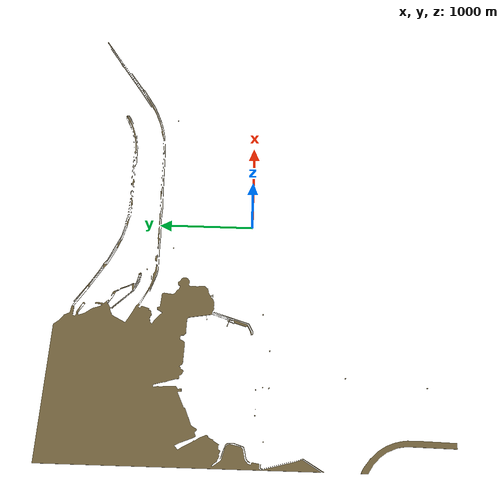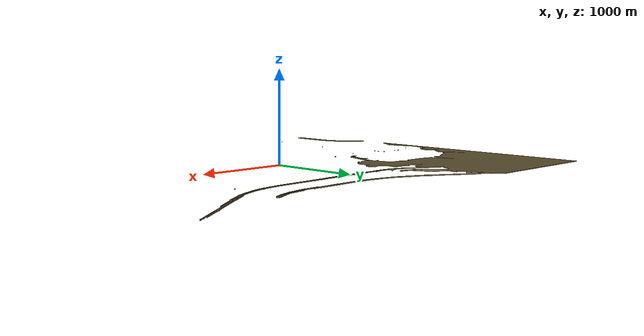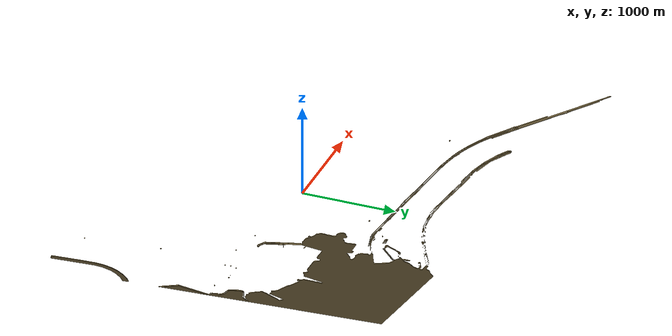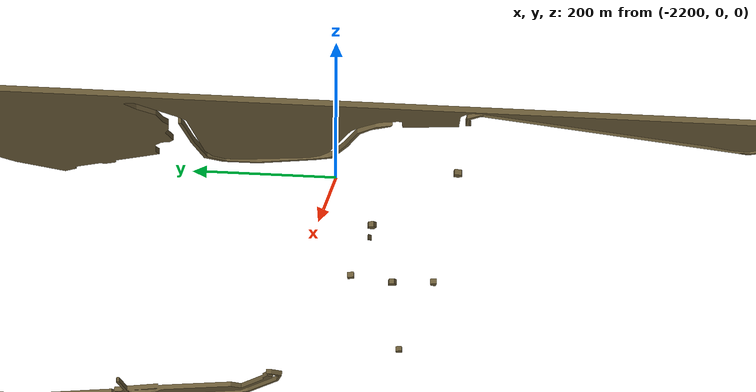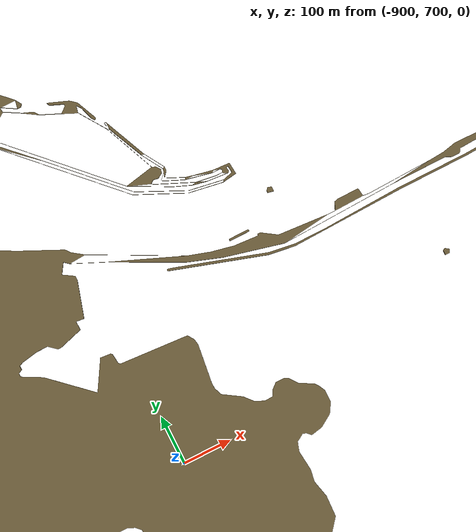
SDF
<?xml version="1.0"?>
<sdf version="1.9">
  <model name="ccs_chart_obstacles_crop">
    <static>true</static>
    <link name="chart_obstacle_001">
      <pose>-1657.167807 1187.774981 0 0 0 0</pose>
      <visual name="visual">
        <geometry>
          <mesh>
            <uri>meshes/chart_obstacle_001.obj</uri>
          </mesh>
        </geometry>
        <material>
          <ambient>0.32 0.28 0.18 1</ambient>
          <diffuse>0.42 0.36 0.22 1</diffuse>
        </material>
      </visual>
      <collision name="collision">
        <geometry>
          <mesh>
            <uri>meshes/chart_obstacle_001.obj</uri>
          </mesh>
        </geometry>
      </collision>
    </link>
    <link name="chart_obstacle_002">
      <pose>-2275.818883 -1518.496843 0 0 0 0</pose>
      <visual name="visual">
        <geometry>
          <mesh>
            <uri>meshes/chart_obstacle_002.obj</uri>
          </mesh>
        </geometry>
        <material>
          <ambient>0.32 0.28 0.18 1</ambient>
          <diffuse>0.42 0.36 0.22 1</diffuse>
        </material>
      </visual>
      <collision name="collision">
        <geometry>
          <mesh>
            <uri>meshes/chart_obstacle_002.obj</uri>
          </mesh>
        </geometry>
      </collision>
    </link>
    <link name="chart_obstacle_003">
      <pose>769.148826 1104.864223 0 0 0 0</pose>
      <visual name="visual">
        <geometry>
          <mesh>
            <uri>meshes/chart_obstacle_003.obj</uri>
          </mesh>
        </geometry>
        <material>
          <ambient>0.32 0.28 0.18 1</ambient>
          <diffuse>0.42 0.36 0.22 1</diffuse>
        </material>
      </visual>
      <collision name="collision">
        <geometry>
          <mesh>
            <uri>meshes/chart_obstacle_003.obj</uri>
          </mesh>
        </geometry>
      </collision>
    </link>
    <link name="chart_obstacle_004">
      <pose>1157.919353 1407.091162 0 0 0 0</pose>
      <visual name="visual">
        <geometry>
          <mesh>
            <uri>meshes/chart_obstacle_004.obj</uri>
          </mesh>
        </geometry>
        <material>
          <ambient>0.32 0.28 0.18 1</ambient>
          <diffuse>0.42 0.36 0.22 1</diffuse>
        </material>
      </visual>
      <collision name="collision">
        <geometry>
          <mesh>
            <uri>meshes/chart_obstacle_004.obj</uri>
          </mesh>
        </geometry>
      </collision>
    </link>
    <link name="chart_obstacle_005">
      <pose>1954.659041 1504.139593 0 0 0 0</pose>
      <visual name="visual">
        <geometry>
          <mesh>
            <uri>meshes/chart_obstacle_005.obj</uri>
          </mesh>
        </geometry>
        <material>
          <ambient>0.32 0.28 0.18 1</ambient>
          <diffuse>0.42 0.36 0.22 1</diffuse>
        </material>
      </visual>
      <collision name="collision">
        <geometry>
          <mesh>
            <uri>meshes/chart_obstacle_005.obj</uri>
          </mesh>
        </geometry>
      </collision>
    </link>
    <link name="chart_obstacle_006">
      <pose>-2444.251734 -446.826123 0 0 0 0</pose>
      <visual name="visual">
        <geometry>
          <mesh>
            <uri>meshes/chart_obstacle_006.obj</uri>
          </mesh>
        </geometry>
        <material>
          <ambient>0.32 0.28 0.18 1</ambient>
          <diffuse>0.42 0.36 0.22 1</diffuse>
        </material>
      </visual>
      <collision name="collision">
        <geometry>
          <mesh>
            <uri>meshes/chart_obstacle_006.obj</uri>
          </mesh>
        </geometry>
      </collision>
    </link>
    <link name="chart_obstacle_007">
      <pose>-1052.788999 140.364629 0 0 0 0</pose>
      <visual name="visual">
        <geometry>
          <mesh>
            <uri>meshes/chart_obstacle_007.obj</uri>
          </mesh>
        </geometry>
        <material>
          <ambient>0.32 0.28 0.18 1</ambient>
          <diffuse>0.42 0.36 0.22 1</diffuse>
        </material>
      </visual>
      <collision name="collision">
        <geometry>
          <mesh>
            <uri>meshes/chart_obstacle_007.obj</uri>
          </mesh>
        </geometry>
      </collision>
    </link>
    <link name="chart_obstacle_008">
      <pose>-2325.773106 104.004432 0 0 0 0</pose>
      <visual name="visual">
        <geometry>
          <mesh>
            <uri>meshes/chart_obstacle_008.obj</uri>
          </mesh>
        </geometry>
        <material>
          <ambient>0.32 0.28 0.18 1</ambient>
          <diffuse>0.42 0.36 0.22 1</diffuse>
        </material>
      </visual>
      <collision name="collision">
        <geometry>
          <mesh>
            <uri>meshes/chart_obstacle_008.obj</uri>
          </mesh>
        </geometry>
      </collision>
    </link>
    <link name="chart_obstacle_009">
      <pose>-606.000000 1045.000000 0 0 0 0</pose>
      <visual name="visual">
        <geometry>
          <mesh>
            <uri>meshes/chart_obstacle_009.obj</uri>
          </mesh>
        </geometry>
        <material>
          <ambient>0.32 0.28 0.18 1</ambient>
          <diffuse>0.42 0.36 0.22 1</diffuse>
        </material>
      </visual>
      <collision name="collision">
        <geometry>
          <mesh>
            <uri>meshes/chart_obstacle_009.obj</uri>
          </mesh>
        </geometry>
      </collision>
    </link>
    <link name="chart_obstacle_010">
      <pose>-2243.601846 -164.547293 0 0 0 0</pose>
      <visual name="visual">
        <geometry>
          <mesh>
            <uri>meshes/chart_obstacle_010.obj</uri>
          </mesh>
        </geometry>
        <material>
          <ambient>0.32 0.28 0.18 1</ambient>
          <diffuse>0.42 0.36 0.22 1</diffuse>
        </material>
      </visual>
      <collision name="collision">
        <geometry>
          <mesh>
            <uri>meshes/chart_obstacle_010.obj</uri>
          </mesh>
        </geometry>
      </collision>
    </link>
    <link name="chart_obstacle_011">
      <pose>-1998.398154 -78.547293 0 0 0 0</pose>
      <visual name="visual">
        <geometry>
          <mesh>
            <uri>meshes/chart_obstacle_011.obj</uri>
          </mesh>
        </geometry>
        <material>
          <ambient>0.32 0.28 0.18 1</ambient>
          <diffuse>0.42 0.36 0.22 1</diffuse>
        </material>
      </visual>
      <collision name="collision">
        <geometry>
          <mesh>
            <uri>meshes/chart_obstacle_011.obj</uri>
          </mesh>
        </geometry>
      </collision>
    </link>
    <link name="chart_obstacle_012">
      <pose>-261.786448 834.409306 0 0 0 0</pose>
      <visual name="visual">
        <geometry>
          <mesh>
            <uri>meshes/chart_obstacle_012.obj</uri>
          </mesh>
        </geometry>
        <material>
          <ambient>0.32 0.28 0.18 1</ambient>
          <diffuse>0.42 0.36 0.22 1</diffuse>
        </material>
      </visual>
      <collision name="collision">
        <geometry>
          <mesh>
            <uri>meshes/chart_obstacle_012.obj</uri>
          </mesh>
        </geometry>
      </collision>
    </link>
    <link name="chart_obstacle_013">
      <pose>-1724.847282 -148.592003 0 0 0 0</pose>
      <visual name="visual">
        <geometry>
          <mesh>
            <uri>meshes/chart_obstacle_013.obj</uri>
          </mesh>
        </geometry>
        <material>
          <ambient>0.32 0.28 0.18 1</ambient>
          <diffuse>0.42 0.36 0.22 1</diffuse>
        </material>
      </visual>
      <collision name="collision">
        <geometry>
          <mesh>
            <uri>meshes/chart_obstacle_013.obj</uri>
          </mesh>
        </geometry>
      </collision>
    </link>
    <link name="chart_obstacle_014">
      <pose>-512.592003 1096.847282 0 0 0 0</pose>
      <visual name="visual">
        <geometry>
          <mesh>
            <uri>meshes/chart_obstacle_014.obj</uri>
          </mesh>
        </geometry>
        <material>
          <ambient>0.32 0.28 0.18 1</ambient>
          <diffuse>0.42 0.36 0.22 1</diffuse>
        </material>
      </visual>
      <collision name="collision">
        <geometry>
          <mesh>
            <uri>meshes/chart_obstacle_014.obj</uri>
          </mesh>
        </geometry>
      </collision>
    </link>
    <link name="chart_obstacle_015">
      <pose>-1613.280508 -963.167809 0 0 0 0</pose>
      <visual name="visual">
        <geometry>
          <mesh>
            <uri>meshes/chart_obstacle_015.obj</uri>
          </mesh>
        </geometry>
        <material>
          <ambient>0.32 0.28 0.18 1</ambient>
          <diffuse>0.42 0.36 0.22 1</diffuse>
        </material>
      </visual>
      <collision name="collision">
        <geometry>
          <mesh>
            <uri>meshes/chart_obstacle_015.obj</uri>
          </mesh>
        </geometry>
      </collision>
    </link>
    <link name="chart_obstacle_016">
      <pose>-1359.145777 -212.988905 0 0 0 0</pose>
      <visual name="visual">
        <geometry>
          <mesh>
            <uri>meshes/chart_obstacle_016.obj</uri>
          </mesh>
        </geometry>
        <material>
          <ambient>0.32 0.28 0.18 1</ambient>
          <diffuse>0.42 0.36 0.22 1</diffuse>
        </material>
      </visual>
      <collision name="collision">
        <geometry>
          <mesh>
            <uri>meshes/chart_obstacle_016.obj</uri>
          </mesh>
        </geometry>
      </collision>
    </link>
    <link name="chart_obstacle_017">
      <pose>-1685.000000 -1763.000000 0 0 0 0</pose>
      <visual name="visual">
        <geometry>
          <mesh>
            <uri>meshes/chart_obstacle_017.obj</uri>
          </mesh>
        </geometry>
        <material>
          <ambient>0.32 0.28 0.18 1</ambient>
          <diffuse>0.42 0.36 0.22 1</diffuse>
        </material>
      </visual>
      <collision name="collision">
        <geometry>
          <mesh>
            <uri>meshes/chart_obstacle_017.obj</uri>
          </mesh>
        </geometry>
      </collision>
    </link>
    <link name="chart_obstacle_018">
      <pose>-1751.000000 -81.000000 0 0 0 0</pose>
      <visual name="visual">
        <geometry>
          <mesh>
            <uri>meshes/chart_obstacle_018.obj</uri>
          </mesh>
        </geometry>
        <material>
          <ambient>0.32 0.28 0.18 1</ambient>
          <diffuse>0.42 0.36 0.22 1</diffuse>
        </material>
      </visual>
      <collision name="collision">
        <geometry>
          <mesh>
            <uri>meshes/chart_obstacle_018.obj</uri>
          </mesh>
        </geometry>
      </collision>
    </link>
    <link name="chart_obstacle_019">
      <pose>1367.000000 899.000000 0 0 0 0</pose>
      <visual name="visual">
        <geometry>
          <mesh>
            <uri>meshes/chart_obstacle_019.obj</uri>
          </mesh>
        </geometry>
        <material>
          <ambient>0.32 0.28 0.18 1</ambient>
          <diffuse>0.42 0.36 0.22 1</diffuse>
        </material>
      </visual>
      <collision name="collision">
        <geometry>
          <mesh>
            <uri>meshes/chart_obstacle_019.obj</uri>
          </mesh>
        </geometry>
      </collision>
    </link>
    <link name="chart_obstacle_020">
      <pose>-1732.667063 -210.757802 0 0 0 0</pose>
      <visual name="visual">
        <geometry>
          <mesh>
            <uri>meshes/chart_obstacle_020.obj</uri>
          </mesh>
        </geometry>
        <material>
          <ambient>0.32 0.28 0.18 1</ambient>
          <diffuse>0.42 0.36 0.22 1</diffuse>
        </material>
      </visual>
      <collision name="collision">
        <geometry>
          <mesh>
            <uri>meshes/chart_obstacle_020.obj</uri>
          </mesh>
        </geometry>
      </collision>
    </link>
    <link name="chart_obstacle_021">
      <pose>-980.667063 -136.757802 0 0 0 0</pose>
      <visual name="visual">
        <geometry>
          <mesh>
            <uri>meshes/chart_obstacle_021.obj</uri>
          </mesh>
        </geometry>
        <material>
          <ambient>0.32 0.28 0.18 1</ambient>
          <diffuse>0.42 0.36 0.22 1</diffuse>
        </material>
      </visual>
      <collision name="collision">
        <geometry>
          <mesh>
            <uri>meshes/chart_obstacle_021.obj</uri>
          </mesh>
        </geometry>
      </collision>
    </link>
    <link name="chart_obstacle_022">
      <pose>-1940.804738 -82.804738 0 0 0 0</pose>
      <visual name="visual">
        <geometry>
          <mesh>
            <uri>meshes/chart_obstacle_022.obj</uri>
          </mesh>
        </geometry>
        <material>
          <ambient>0.32 0.28 0.18 1</ambient>
          <diffuse>0.42 0.36 0.22 1</diffuse>
        </material>
      </visual>
      <collision name="collision">
        <geometry>
          <mesh>
            <uri>meshes/chart_obstacle_022.obj</uri>
          </mesh>
        </geometry>
      </collision>
    </link>
  </model>
</sdf>
